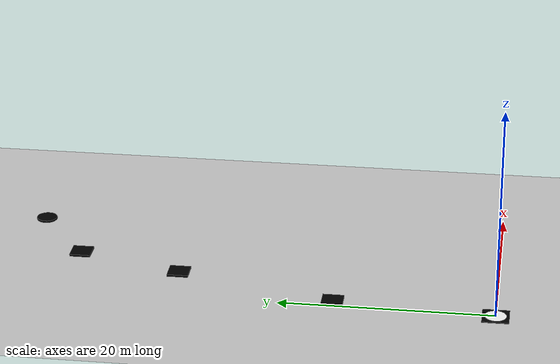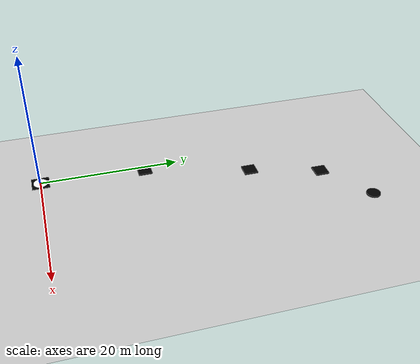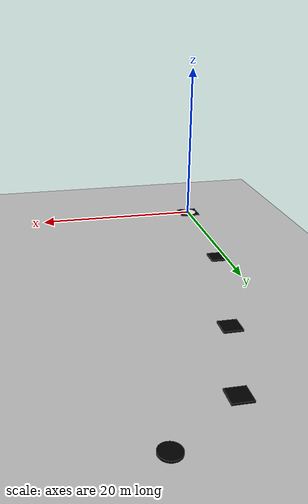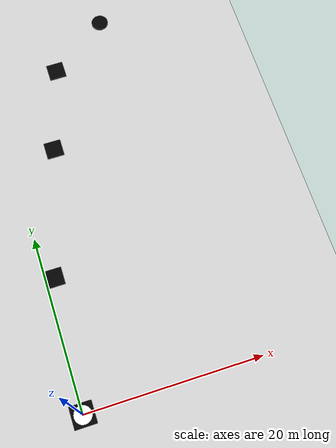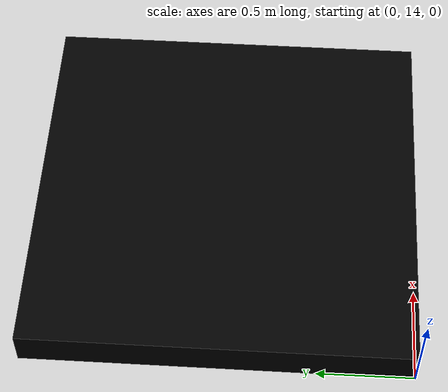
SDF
<sdf version="1.6">
 <world name="default">
  <physics type="ode">
   <ode>
    <solver><type>quick</type><iters>100</iters><sor>1.0</sor></solver>
    <constraints>
     <cfm>0.0</cfm>
     <erp>0.9</erp>
     <contact_max_correcting_vel>0.1</contact_max_correcting_vel>
     <contact_surface_layer>0.0</contact_surface_layer>
    </constraints>
   </ode>
   <real_time_update_rate>0</real_time_update_rate>
   <max_step_size>0.0025</max_step_size>
  </physics>
  <include><uri>model://sun</uri></include>
  <model name="ground_plane">
   <static>true</static>
   <link name="link">
    <collision name="collision">
     <geometry><plane><normal>0 0 1</normal><size>2000 2000</size></plane></geometry>
     <surface><friction><ode><mu>1</mu><mu2>1</mu2></ode></friction></surface>
    </collision>
    <visual name="grass_plane">
     <pose>0 0 0.01 0 0 0</pose>
     <cast_shadows>false</cast_shadows>
     <geometry><plane><normal>0 0 1</normal><size>5000 5000</size></plane></geometry>
     <material><ambient>0.8 0.8 0.8 1</ambient><diffuse>0.8 0.8 0.8 1</diffuse></material>
    </visual>
   </link>
  </model>
  <model name="holder_start">
   <static>true</static>
   <link name="link">
    <visual name="visual">
     <geometry><box><size>2.5 2.5 0.08</size></box></geometry>
     <material><ambient>0 0 0 1</ambient><diffuse>0 0 0 1</diffuse></material>
    </visual>
   </link>
  </model>
  <model name="start_place">
   <static>true</static>
   <link name="link">
    <visual name="visual">
     <geometry><cylinder><radius>1</radius><length>0.11</length></cylinder></geometry>
     <material><ambient>1 1 1 1</ambient><diffuse>1 1 1 1</diffuse></material>
    </visual>
   </link>
  </model>
  <model name="tile_1">
   <static>true</static>
   <pose>1 15 0.1 0 0 0</pose>
   <link name="link">
    <visual name="visual">
     <geometry><box><size>2 2 0.2</size></box></geometry>
     <material><ambient>0 0 0 1</ambient><diffuse>0 0 0 1</diffuse></material>
    </visual>
   </link>
  </model>
  <model name="tile_2">
   <static>true</static>
   <pose>5 30 0.1 0 0 0</pose>
   <link name="link">
    <visual name="visual">
     <geometry><box><size>2 2 0.2</size></box></geometry>
     <material><ambient>0 0 0 1</ambient><diffuse>0 0 0 1</diffuse></material>
    </visual>
   </link>
  </model>
  <model name="tile_3">
   <static>true</static>
   <pose>8 40 0.1 0 0 0</pose>
   <link name="link">
    <visual name="visual">
     <geometry><box><size>2 2 0.2</size></box></geometry>
     <material><ambient>0 0 0 1</ambient><diffuse>0 0 0 1</diffuse></material>
    </visual>
   </link>
  </model>
  <model name="tile_4">
   <static>true</static>
   <pose>15 45 0.1 0 0 0</pose>
   <link name="link">
    <visual name="visual">
     <geometry><cylinder><radius>1.0</radius><length>0.2</length></cylinder></geometry>
     <material><ambient>0 0 0 1</ambient><diffuse>0 0 0 1</diffuse></material>
    </visual>
   </link>
  </model>
 </world>
</sdf>
